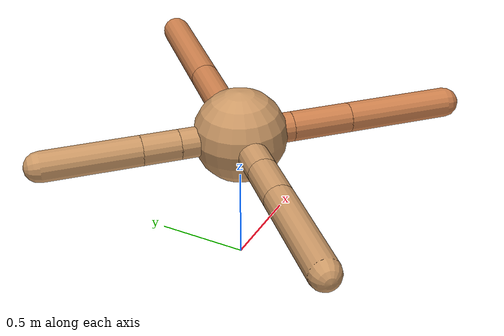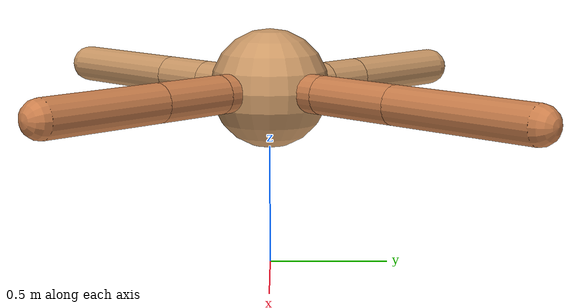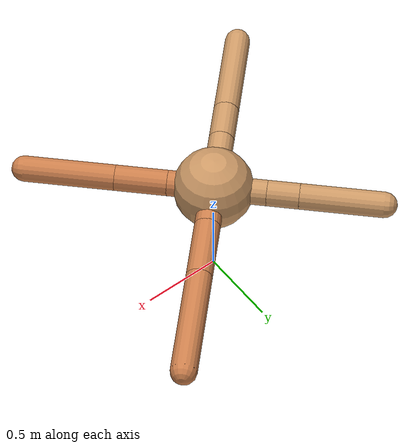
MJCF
<mujoco model="ant">
  <compiler angle="degree" coordinate="local" inertiafromgeom="true" />
  <option integrator="RK4" timestep="0.01" />
  <custom>
    <numeric data="0.0 0.0 0.55 1.0 0.0 0.0 0.0 0.0 1.0 0.0 -1.0 0.0 -1.0 0.0 1.0" name="init_qpos" />
  </custom>
  <default>
    <joint armature="1" damping="1" limited="true" />
    <geom conaffinity="0" condim="3" density="5.0" friction="1.5 0.1 0.1" margin="0.01" rgba="0.8 0.6 0.4 1" />
  </default>
  <worldbody>
    <body name="torso" pos="0 0 0.75">
      <geom name="torso_geom" pos="0 0 0" size="0.25" type="sphere" />

      <body name="front_left_leg" pos="0 0 0">
        <geom fromto="0.0 0.0 0.0 0.21296327864945655 0.21296327864945655 0.0" name="aux_1_geom" size="0.08" type="capsule" rgba=".8 .5 .3 1" />
        <body name="aux_1" pos="0.21296327864945655 0.21296327864945655 0.0">
          <joint axis="0 0 1" name="hip_1" pos="0.0 0.0 0.0" range="-40 40" type="hinge" />
          <geom fromto="0.0 0.0 0.0 0.26940613156320387 0.26940613156320387 0.0" name="left_leg_geom" size="0.08" type="capsule" rgba=".8 .5 .3 1" />
          <body pos="0.26940613156320387 0.26940613156320387 0.0" name="front_left_foot">
            <joint axis="-1 1 0" name="ankle_1" pos="0.0 0.0 0.0" range="30 100" type="hinge" />
            <geom fromto="0.0 0.0 0.0 0.4800092607026928 0.4800092607026928 0.0" name="left_ankle_geom" size="0.08" type="capsule" rgba=".8 .5 .3 1" />
          </body>
        </body>
      </body>
      <body name="front_right_leg" pos="0 0 0">
        <geom fromto="0.0 0.0 0.0 -0.231337800245198 0.231337800245198 0.0" name="aux_2_geom" size="0.08" type="capsule" />
        <body name="aux_2" pos="-0.231337800245198 0.231337800245198 0.0">
          <joint axis="0 0 1" name="hip_2" pos="0.0 0.0 0.0" range="-40 40" type="hinge" />
          <geom fromto="0.0 0.0 0.0 -0.14096802617985157 0.14096802617985157 0.0" name="right_leg_geom" size="0.08" type="capsule" />
          <body pos="-0.14096802617985157 0.14096802617985157 0.0" name="front_right_foot">
            <joint axis="1 1 0" name="ankle_2" pos="0.0 0.0 0.0" range="-100 -30" type="hinge" />
            <geom fromto="0.0 0.0 0.0 -0.36557336548868125 0.36557336548868125 0.0" name="right_ankle_geom" size="0.08" type="capsule" />
          </body>
        </body>
      </body>
      <body name="left_back_leg" pos="0 0 0">
        <geom fromto="0.0 0.0 0.0 -0.2729882225071993 -0.2729882225071993 0.0" name="aux_3_geom" size="0.08" type="capsule" />
        <body name="aux_3" pos="-0.2729882225071993 -0.2729882225071993 0.0">
          <joint axis="0 0 1" name="hip_3" pos="0.0 0.0 0.0" range="-40 40" type="hinge" />
          <geom fromto="0.0 0.0 0.0 -0.17152007396476276 -0.17152007396476276 0.0" name="back_leg_geom" size="0.08" type="capsule" />
          <body pos="-0.17152007396476276 -0.17152007396476276 0.0" name="left_back_foot">
            <joint axis="-1 1 0" name="ankle_3" pos="0.0 0.0 0.0" range="-100 -30" type="hinge" />
            <geom fromto="0.0 0.0 0.0 -0.41907416159851674 -0.41907416159851674 0.0" name="third_ankle_geom" size="0.08" type="capsule" />
          </body>
        </body>
      </body>
      <body name="right_back_leg" pos="0 0 0">
        <geom fromto="0.0 0.0 0.0 0.2002335079774686 -0.2002335079774686 0.0" name="aux_4_geom" size="0.08" type="capsule" rgba=".8 .5 .3 1" />
        <body name="aux_4" pos="0.2002335079774686 -0.2002335079774686 0.0">
          <joint axis="0 0 1" name="hip_4" pos="0.0 0.0 0.0" range="-40 40" type="hinge" />
          <geom fromto="0.0 0.0 0.0 0.22917814903061054 -0.22917814903061054 0.0" name="rightback_leg_geom" size="0.08" type="capsule" rgba=".8 .5 .3 1" />
          <body pos="0.22917814903061054 -0.22917814903061054 0.0" name="right_back_foot">
            <joint axis="1 1 0" name="ankle_4" pos="0.0 0.0 0.0" range="30 100" type="hinge" />
            <geom fromto="0.0 0.0 0.0 0.39840832109125945 -0.39840832109125945 0.0" name="fourth_ankle_geom" size="0.08" type="capsule" rgba=".8 .5 .3 1" />
          </body>
        </body>
      </body>
    </body>
  </worldbody>
  <actuator>
    <motor ctrllimited="true" ctrlrange="-1.0 1.0" joint="hip_4" gear="150" />
    <motor ctrllimited="true" ctrlrange="-1.0 1.0" joint="ankle_4" gear="150" />
    <motor ctrllimited="true" ctrlrange="-1.0 1.0" joint="hip_1" gear="150" />
    <motor ctrllimited="true" ctrlrange="-1.0 1.0" joint="ankle_1" gear="150" />
    <motor ctrllimited="true" ctrlrange="-1.0 1.0" joint="hip_2" gear="150" />
    <motor ctrllimited="true" ctrlrange="-1.0 1.0" joint="ankle_2" gear="150" />
    <motor ctrllimited="true" ctrlrange="-1.0 1.0" joint="hip_3" gear="150" />
    <motor ctrllimited="true" ctrlrange="-1.0 1.0" joint="ankle_3" gear="150" />
  </actuator>
</mujoco>
